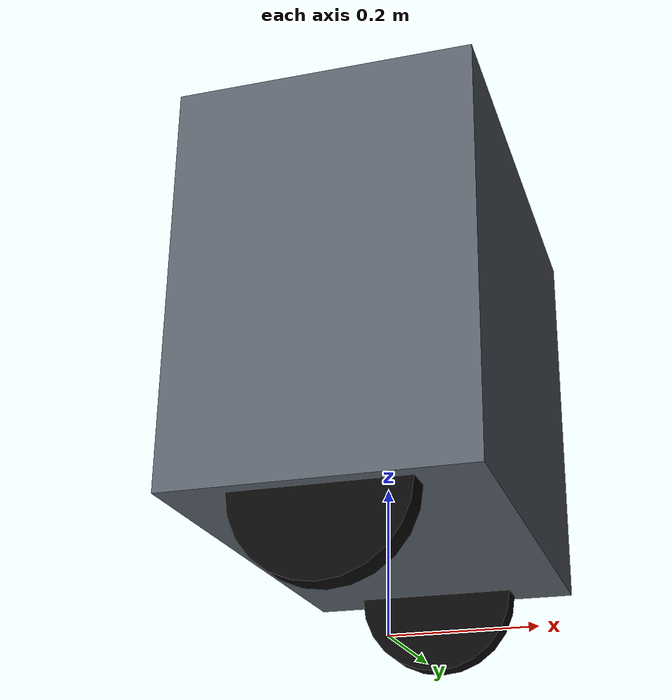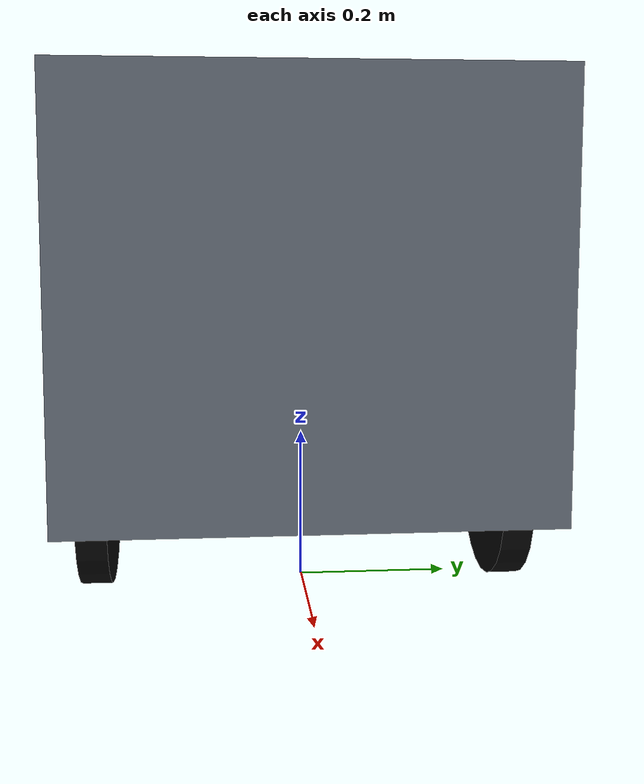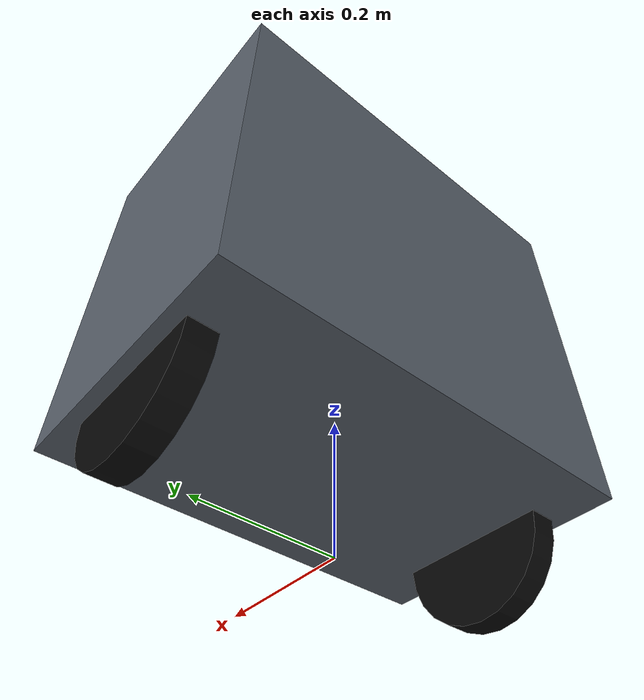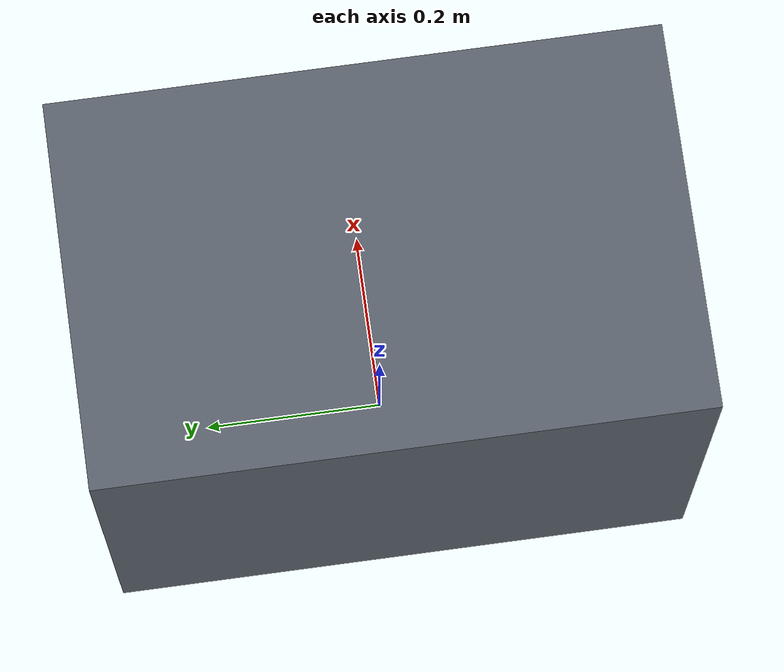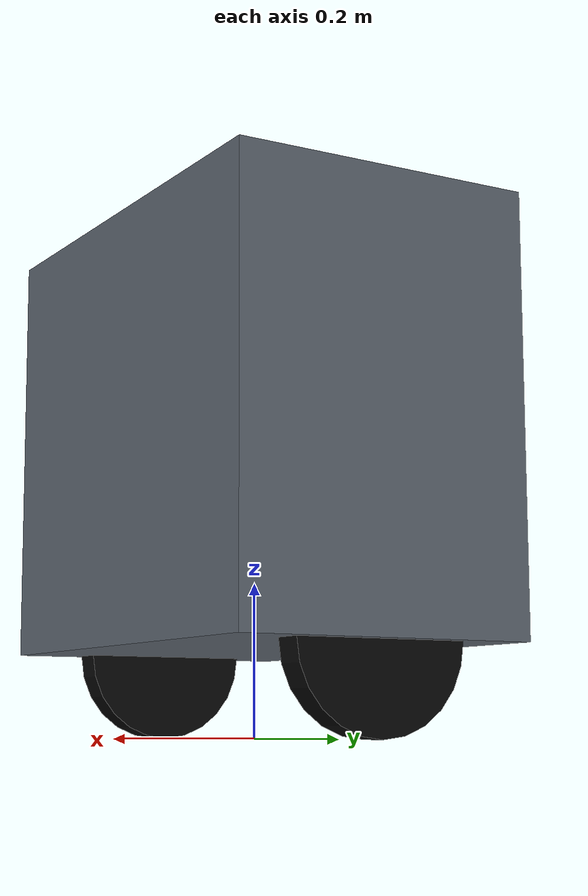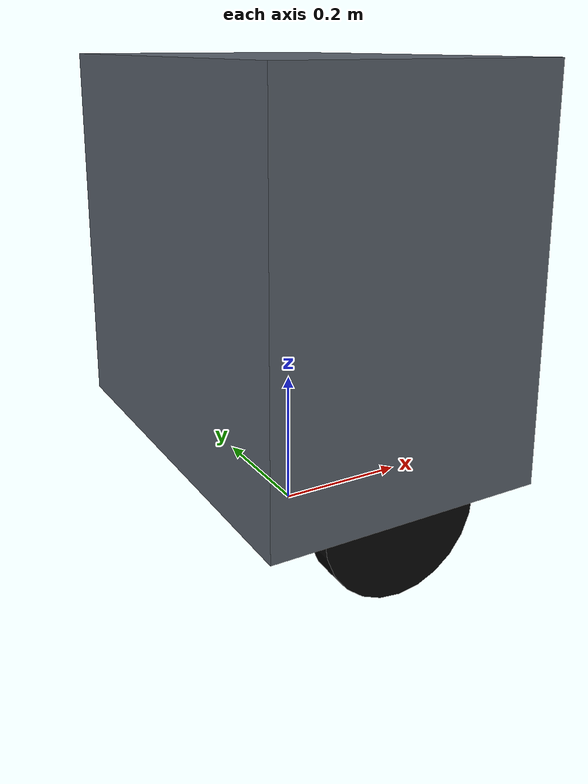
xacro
<?xml version="1.0"?>
<robot xmlns:xacro="http://www.ros.org/wiki/xacro" name="safestride">
  <!-- Replace these measured values before using odometry on the real walker. -->
  <xacro:arg name="wheel_radius" default="0.115"/>
  <xacro:arg name="wheel_separation" default="0.55"/>
  <xacro:arg name="wheel_width" default="0.04"/>

  <xacro:property name="wheel_radius" value="$(arg wheel_radius)"/>
  <xacro:property name="wheel_separation" value="$(arg wheel_separation)"/>
  <xacro:property name="wheel_width" value="$(arg wheel_width)"/>

  <material name="frame_gray">
    <color rgba="0.35 0.38 0.42 1.0"/>
  </material>
  <material name="wheel_black">
    <color rgba="0.03 0.03 0.03 1.0"/>
  </material>

  <link name="base_footprint"/>

  <joint name="base_footprint_joint" type="fixed">
    <parent link="base_footprint"/>
    <child link="base_link"/>
    <origin xyz="0 0 ${wheel_radius}" rpy="0 0 0"/>
  </joint>

  <link name="base_link">
    <visual>
      <origin xyz="0 0 0.28" rpy="0 0 0"/>
      <geometry>
        <box size="0.40 ${wheel_separation + 0.08} 0.56"/>
      </geometry>
      <material name="frame_gray"/>
    </visual>
    <collision>
      <origin xyz="0 0 0.28" rpy="0 0 0"/>
      <geometry>
        <box size="0.40 ${wheel_separation + 0.08} 0.56"/>
      </geometry>
    </collision>
    <inertial>
      <origin xyz="0 0 0.28" rpy="0 0 0"/>
      <mass value="20.0"/>
      <inertia ixx="1.0" ixy="0.0" ixz="0.0" iyy="1.0" iyz="0.0" izz="1.0"/>
    </inertial>
  </link>

  <xacro:macro name="wheel" params="side y">
    <link name="${side}_wheel_link">
      <visual>
        <origin xyz="0 0 0" rpy="${pi / 2} 0 0"/>
        <geometry>
          <cylinder radius="${wheel_radius}" length="${wheel_width}"/>
        </geometry>
        <material name="wheel_black"/>
      </visual>
      <collision>
        <origin xyz="0 0 0" rpy="${pi / 2} 0 0"/>
        <geometry>
          <cylinder radius="${wheel_radius}" length="${wheel_width}"/>
        </geometry>
      </collision>
      <inertial>
        <mass value="1.0"/>
        <inertia ixx="0.01" ixy="0.0" ixz="0.0" iyy="0.01" iyz="0.0" izz="0.01"/>
      </inertial>
    </link>
    <joint name="${side}_wheel_joint" type="continuous">
      <parent link="base_link"/>
      <child link="${side}_wheel_link"/>
      <origin xyz="0 ${y} 0" rpy="0 0 0"/>
      <axis xyz="0 1 0"/>
    </joint>
  </xacro:macro>

  <xacro:wheel side="left" y="${wheel_separation / 2}"/>
  <xacro:wheel side="right" y="${-wheel_separation / 2}"/>

  <link name="imu_link"/>
  <joint name="imu_joint" type="fixed">
    <parent link="base_link"/>
    <child link="imu_link"/>
    <origin xyz="0 0 0.35" rpy="0 0 0"/>
  </joint>

  <link name="terrain_tof_link"/>
  <joint name="terrain_tof_joint" type="fixed">
    <parent link="base_link"/>
    <child link="terrain_tof_link"/>
    <!-- Range messages point along +X; +90 deg pitch aims +X downward. -->
    <origin xyz="0.18 0 0.08" rpy="0 ${pi / 2} 0"/>
  </joint>

  <link name="front_left_range_link"/>
  <joint name="front_left_range_joint" type="fixed">
    <parent link="base_link"/>
    <child link="front_left_range_link"/>
    <origin xyz="0.21 0.18 0.08" rpy="0 0 0"/>
  </joint>

  <link name="front_right_range_link"/>
  <joint name="front_right_range_joint" type="fixed">
    <parent link="base_link"/>
    <child link="front_right_range_link"/>
    <origin xyz="0.21 -0.18 0.08" rpy="0 0 0"/>
  </joint>
</robot>
